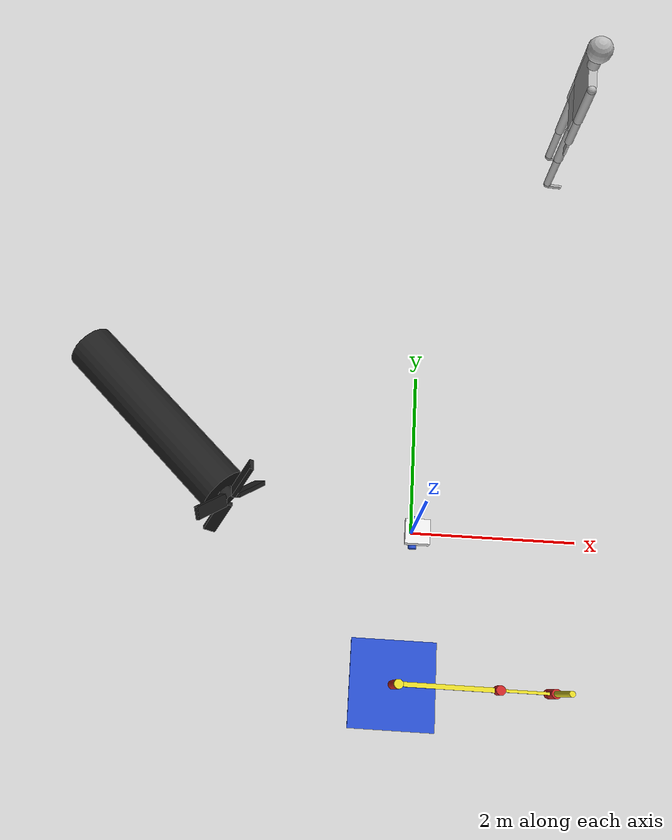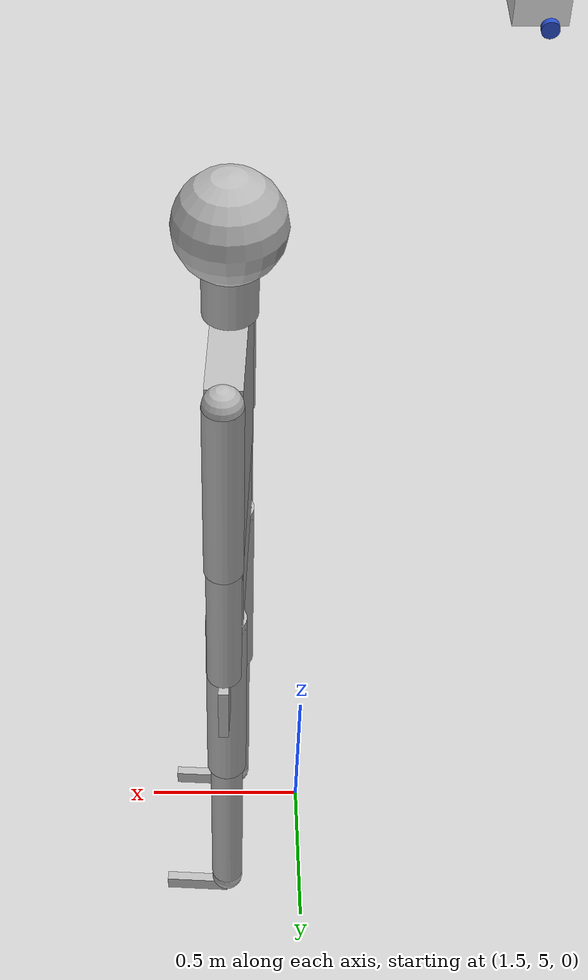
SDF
<sdf version="1.7">
 <world name="default">
  <light name="sun" type="directional">
   <pose>0 0 10 0 -0 0</pose>
   <diffuse>0.8 0.8 0.8 1</diffuse>
   <specular>0.2 0.2 0.2 1</specular>
   <attenuation>
    <range>1000</range>
    <constant>0.9</constant>
    <linear>0.01</linear>
    <quadratic>0.001</quadratic>
   </attenuation>
   <direction>-0.5 0.1 -0.9</direction>
   <spot><inner_angle>0</inner_angle><outer_angle>0</outer_angle><falloff>0</falloff></spot>
  </light>
  <model name="ground_plane">
   <static>1</static>
   <link name="link">
    <collision name="collision">
     <geometry><plane><normal>0 0 1</normal><size>100 100</size></plane></geometry>
     <surface>
      <contact><collide_bitmask>65535</collide_bitmask></contact>
      <friction><ode><mu>100</mu><mu2>50</mu2></ode></friction>
     </surface>
    </collision>
    <visual name="visual">
     <cast_shadows>0</cast_shadows>
     <geometry><plane><normal>0 0 1</normal><size>100 100</size></plane></geometry>
     <material>
      <script><uri>file://media/materials/scripts/gazebo.material</uri><name>Gazebo/Grey</name></script>
     </material>
    </visual>
   </link>
  </model>
  <gravity>0 0 -9.8</gravity>
  <magnetic_field>6e-06 2.3e-05 -4.2e-05</magnetic_field>
  <atmosphere type="adiabatic"/>
  <physics type="ode">
   <max_step_size>0.001</max_step_size>
   <real_time_factor>1</real_time_factor>
   <real_time_update_rate>1000</real_time_update_rate>
  </physics>
  <scene><ambient>0.4 0.4 0.4 1</ambient><background>0.7 0.7 0.7 1</background><shadows>1</shadows></scene>
  <audio><device>default</device></audio>
  <spherical_coordinates>
   <surface_model>EARTH_WGS84</surface_model>
   <latitude_deg>0</latitude_deg>
   <longitude_deg>0</longitude_deg>
   <elevation>0</elevation>
   <heading_deg>0</heading_deg>
  </spherical_coordinates>
  <model name="my_bot">
   <link name="base_link">
    <inertial>
     <pose>0.065 0 0.0625 0 -0 0</pose>
     <mass>0.6</mass>
     <inertia>
      <ixx>0.00525625</ixx>
      <ixy>0</ixy>
      <ixz>0.0005625</ixz>
      <iyy>0.00593125</iyy>
      <iyz>0</iyz>
      <izz>0.008275</izz>
     </inertia>
    </inertial>
    <collision name="base_link_fixed_joint_lump__chassis_collision">
     <pose>0.05 0 0.075 0 -0 0</pose>
     <geometry><box><size>0.3 0.3 0.15</size></box></geometry>
    </collision>
    <collision name="base_link_fixed_joint_lump__caster_wheel_collision_1">
     <pose>0.14 0 0 0 -0 0</pose>
     <geometry><sphere><radius>0.05</radius></sphere></geometry>
     <surface><friction><ode><mu>0.001</mu><mu2>0.001</mu2></ode></friction></surface>
    </collision>
    <visual name="base_link_fixed_joint_lump__chassis_visual">
     <pose>0.05 0 0.075 0 -0 0</pose>
     <geometry><box><size>0.3 0.3 0.15</size></box></geometry>
     <material>
      <script><name>Gazebo/White</name><uri>file://media/materials/scripts/gazebo.material</uri></script>
     </material>
    </visual>
    <visual name="base_link_fixed_joint_lump__caster_wheel_visual_1">
     <pose>0.14 0 0 0 -0 0</pose>
     <geometry><sphere><radius>0.05</radius></sphere></geometry>
     <material>
      <script><name>Gazebo/Black</name><uri>file://media/materials/scripts/gazebo.material</uri></script>
     </material>
    </visual>
   </link>
   <joint name="left_wheel_joint" type="revolute">
    <pose relative_to="base_link">0 0.175 0 -1.5708 0 0</pose>
    <parent>base_link</parent>
    <child>left_wheel</child>
    <axis>
     <xyz>0 0 1</xyz>
     <limit><lower>-1e+16</lower><upper>1e+16</upper></limit>
     <dynamics><spring_reference>0</spring_reference><spring_stiffness>0</spring_stiffness></dynamics>
    </axis>
   </joint>
   <link name="left_wheel">
    <pose relative_to="left_wheel_joint">0 0 0 0 -0 0</pose>
    <inertial>
     <mass>0.1</mass>
     <inertia>
      <ixx>7.58333e-05</ixx>
      <ixy>0</ixy>
      <ixz>0</ixz>
      <iyy>7.58333e-05</iyy>
      <iyz>0</iyz>
      <izz>0.000125</izz>
     </inertia>
    </inertial>
    <collision name="left_wheel_collision">
     <geometry><cylinder><length>0.04</length><radius>0.05</radius></cylinder></geometry>
    </collision>
    <visual name="left_wheel_visual">
     <geometry><cylinder><length>0.04</length><radius>0.05</radius></cylinder></geometry>
     <material>
      <script><name>Gazebo/Blue</name><uri>file://media/materials/scripts/gazebo.material</uri></script>
     </material>
    </visual>
   </link>
   <joint name="right_wheel_joint" type="revolute">
    <pose relative_to="base_link">0 -0.175 0 1.5708 -0 0</pose>
    <parent>base_link</parent>
    <child>right_wheel</child>
    <axis>
     <xyz>0 0 -1</xyz>
     <limit><lower>-1e+16</lower><upper>1e+16</upper></limit>
     <dynamics><spring_reference>0</spring_reference><spring_stiffness>0</spring_stiffness></dynamics>
    </axis>
   </joint>
   <link name="right_wheel">
    <pose relative_to="right_wheel_joint">0 0 0 0 -0 0</pose>
    <inertial>
     <mass>0.1</mass>
     <inertia>
      <ixx>7.58333e-05</ixx>
      <ixy>0</ixy>
      <ixz>0</ixz>
      <iyy>7.58333e-05</iyy>
      <iyz>0</iyz>
      <izz>0.000125</izz>
     </inertia>
    </inertial>
    <collision name="right_wheel_collision">
     <geometry><cylinder><length>0.04</length><radius>0.05</radius></cylinder></geometry>
    </collision>
    <visual name="right_wheel_visual">
     <geometry><cylinder><length>0.04</length><radius>0.05</radius></cylinder></geometry>
     <material>
      <script><name>Gazebo/Blue</name><uri>file://media/materials/scripts/gazebo.material</uri></script>
     </material>
    </visual>
   </link>
   <static>0</static>
   <plugin name="diff_drive" filename="libgazebo_ros_diff_drive.so">
    <left_joint>left_wheel_joint</left_joint>
    <right_joint>right_wheel_joint</right_joint>
    <wheel_separation>0.35</wheel_separation>
    <wheel_diameter>0.1</wheel_diameter>
    <max_wheel_torque>200</max_wheel_torque>
    <max_wheel_acceleration>10.0</max_wheel_acceleration>
    <odometry_frame>odom</odometry_frame>
    <robot_base_frame>base_link</robot_base_frame>
    <publish_odom>1</publish_odom>
    <publish_odom_tf>1</publish_odom_tf>
    <publish_wheel_tf>1</publish_wheel_tf>
   </plugin>
   <pose>0.020483 6.7e-05 0.05 0 1.5e-05 0.000398</pose>
  </model>
  <model name="ragdoll">
   <pose>1.74314 5.16667 1.39992 7.2e-05 0.008647 -0.063576</pose>
   <link name="hip">
    <inertial>
     <inertia><ixx>0.1</ixx><ixy>0</ixy><ixz>0</ixz><iyy>0.1</iyy><iyz>0</iyz><izz>0.1</izz></inertia>
     <mass>10</mass>
    </inertial>
    <collision name="hip_geom">
     <pose>0 0 0.125 0 -0 0</pose>
     <geometry><box><size>0.1 0.5 0.25</size></box></geometry>
     <surface>
      <friction><ode><mu>-1</mu><mu2>-1</mu2><fdir1>0 0 0</fdir1><slip1>0</slip1><slip2>0</slip2></ode></friction>
      <bounce><restitution_coefficient>0</restitution_coefficient><threshold>100000</threshold></bounce>
      <contact>
       <ode>
        <soft_cfm>0</soft_cfm>
        <soft_erp>0.2</soft_erp>
        <kp>1e+12</kp>
        <kd>1</kd>
        <max_vel>0</max_vel>
        <min_depth>0.001</min_depth>
       </ode>
      </contact>
     </surface>
    </collision>
    <visual name="hip_geom_visual">
     <pose>0 0 0.125 0 -0 0</pose>
     <geometry><box><size>0.1 0.5 0.25</size></box></geometry>
    </visual>
    <gravity>0</gravity>
   </link>
   <link name="l_thigh_pan">
    <pose>0 0.22 0 0 -0 0</pose>
    <inertial>
     <inertia><ixx>0.01</ixx><ixy>0</ixy><ixz>0</ixz><iyy>0.01</iyy><iyz>0</iyz><izz>0.01</izz></inertia>
     <mass>1</mass>
    </inertial>
    <collision name="l_thigh_pan_geom">
     <pose>0 0 -0.03 0 -0 0</pose>
     <geometry><sphere><radius>0.06</radius></sphere></geometry>
     <surface>
      <friction><ode><mu>-1</mu><mu2>-1</mu2><fdir1>0 0 0</fdir1><slip1>0</slip1><slip2>0</slip2></ode></friction>
      <bounce><restitution_coefficient>0</restitution_coefficient><threshold>100000</threshold></bounce>
      <contact>
       <ode>
        <soft_cfm>0</soft_cfm>
        <soft_erp>0.2</soft_erp>
        <kp>1e+12</kp>
        <kd>1</kd>
        <max_vel>0</max_vel>
        <min_depth>0.001</min_depth>
       </ode>
      </contact>
     </surface>
    </collision>
    <visual name="l_thigh_pan_geom_visual">
     <pose>0 0 -0.03 0 -0 0</pose>
     <geometry><sphere><radius>0.06</radius></sphere></geometry>
    </visual>
    <gravity>0</gravity>
   </link>
   <link name="l_thigh_lift">
    <pose>0 0.22 0 0 -0 0</pose>
    <inertial>
     <inertia><ixx>0.05</ixx><ixy>0</ixy><ixz>0</ixz><iyy>0.05</iyy><iyz>0</iyz><izz>0.05</izz></inertia>
     <mass>5</mass>
    </inertial>
    <collision name="l_thigh_lift_geom">
     <pose>0 0 -0.35 0 -0 0</pose>
     <geometry><cylinder><radius>0.06</radius><length>0.7</length></cylinder></geometry>
     <surface>
      <friction><ode><mu>-1</mu><mu2>-1</mu2><fdir1>0 0 0</fdir1><slip1>0</slip1><slip2>0</slip2></ode></friction>
      <bounce><restitution_coefficient>0</restitution_coefficient><threshold>100000</threshold></bounce>
      <contact>
       <ode>
        <soft_cfm>0</soft_cfm>
        <soft_erp>0.2</soft_erp>
        <kp>1e+12</kp>
        <kd>1</kd>
        <max_vel>0</max_vel>
        <min_depth>0.001</min_depth>
       </ode>
      </contact>
     </surface>
    </collision>
    <visual name="l_thigh_lift_geom_visual">
     <pose>0 0 -0.35 0 -0 0</pose>
     <geometry><cylinder><radius>0.06</radius><length>0.7</length></cylinder></geometry>
    </visual>
    <gravity>0</gravity>
   </link>
   <link name="l_calf">
    <pose>0 0.22 -0.7 0 -0 0</pose>
    <inertial>
     <inertia><ixx>0.02</ixx><ixy>0</ixy><ixz>0</ixz><iyy>0.02</iyy><iyz>0</iyz><izz>0.02</izz></inertia>
     <mass>2</mass>
    </inertial>
    <collision name="l_calf_geom">
     <pose>0 0 -0.3 0 -0 0</pose>
     <geometry><cylinder><radius>0.05</radius><length>0.6</length></cylinder></geometry>
     <surface>
      <friction><ode><mu>-1</mu><mu2>-1</mu2><fdir1>0 0 0</fdir1><slip1>0</slip1><slip2>0</slip2></ode></friction>
      <bounce><restitution_coefficient>0</restitution_coefficient><threshold>100000</threshold></bounce>
      <contact>
       <ode>
        <soft_cfm>0</soft_cfm>
        <soft_erp>0.2</soft_erp>
        <kp>1e+12</kp>
        <kd>1</kd>
        <max_vel>0</max_vel>
        <min_depth>0.001</min_depth>
       </ode>
      </contact>
     </surface>
    </collision>
    <visual name="l_calf_geom_visual">
     <pose>0 0 -0.3 0 -0 0</pose>
     <geometry><cylinder><radius>0.05</radius><length>0.6</length></cylinder></geometry>
    </visual>
    <gravity>0</gravity>
   </link>
   <link name="l_ankle">
    <pose>0 0.22 -1.325 0 -0 0</pose>
    <inertial>
     <inertia><ixx>0.01</ixx><ixy>0</ixy><ixz>0</ixz><iyy>0.01</iyy><iyz>0</iyz><izz>0.01</izz></inertia>
     <mass>1</mass>
    </inertial>
    <collision name="l_ankle_geom">
     <geometry><sphere><radius>0.05</radius></sphere></geometry>
     <surface>
      <friction><ode><mu>-1</mu><mu2>-1</mu2><fdir1>0 0 0</fdir1><slip1>0</slip1><slip2>0</slip2></ode></friction>
      <bounce><restitution_coefficient>0</restitution_coefficient><threshold>100000</threshold></bounce>
      <contact>
       <ode>
        <soft_cfm>0</soft_cfm>
        <soft_erp>0.2</soft_erp>
        <kp>1e+12</kp>
        <kd>1</kd>
        <max_vel>0</max_vel>
        <min_depth>0.001</min_depth>
       </ode>
      </contact>
     </surface>
    </collision>
    <visual name="l_ankle_geom_visual"><geometry><sphere><radius>0.05</radius></sphere></geometry></visual>
    <gravity>0</gravity>
   </link>
   <link name="l_foot">
    <pose>0 0.22 -1.35 0 -0 0</pose>
    <inertial>
     <pose>0.1 0 0 0 -0 0</pose>
     <inertia><ixx>0.01</ixx><ixy>0</ixy><ixz>0</ixz><iyy>0.01</iyy><iyz>0</iyz><izz>0.01</izz></inertia>
     <mass>1</mass>
    </inertial>
    <collision name="l_foot_geom">
     <pose>0.1 0 -0.025 0 -0 0</pose>
     <geometry><box><size>0.2 0.03 0.05</size></box></geometry>
     <surface>
      <friction><ode><mu>-1</mu><mu2>-1</mu2><fdir1>0 0 0</fdir1><slip1>0</slip1><slip2>0</slip2></ode></friction>
      <bounce><restitution_coefficient>0</restitution_coefficient><threshold>100000</threshold></bounce>
      <contact>
       <ode>
        <soft_cfm>0</soft_cfm>
        <soft_erp>0.2</soft_erp>
        <kp>1e+12</kp>
        <kd>1</kd>
        <max_vel>0</max_vel>
        <min_depth>0.001</min_depth>
       </ode>
      </contact>
     </surface>
    </collision>
    <visual name="l_foot_geom_visual">
     <pose>0.1 0 -0.025 0 -0 0</pose>
     <geometry><box><size>0.2 0.03 0.05</size></box></geometry>
    </visual>
   </link>
   <link name="r_thigh_pan">
    <pose>0 -0.22 0 0 -0 0</pose>
    <inertial>
     <inertia><ixx>0.01</ixx><ixy>0</ixy><ixz>0</ixz><iyy>0.01</iyy><iyz>0</iyz><izz>0.01</izz></inertia>
     <mass>1</mass>
    </inertial>
    <collision name="r_thigh_pan_geom">
     <pose>0 0 -0.03 0 -0 0</pose>
     <geometry><sphere><radius>0.06</radius></sphere></geometry>
     <surface>
      <friction><ode><mu>-1</mu><mu2>-1</mu2><fdir1>0 0 0</fdir1><slip1>0</slip1><slip2>0</slip2></ode></friction>
      <bounce><restitution_coefficient>0</restitution_coefficient><threshold>100000</threshold></bounce>
      <contact>
       <ode>
        <soft_cfm>0</soft_cfm>
        <soft_erp>0.2</soft_erp>
        <kp>1e+12</kp>
        <kd>1</kd>
        <max_vel>0</max_vel>
        <min_depth>0.001</min_depth>
       </ode>
      </contact>
     </surface>
    </collision>
    <visual name="r_thigh_pan_geom_visual">
     <pose>0 0 -0.03 0 -0 0</pose>
     <geometry><sphere><radius>0.06</radius></sphere></geometry>
    </visual>
    <gravity>0</gravity>
   </link>
   <link name="r_thigh_lift">
    <pose>0 -0.22 0 0 -0 0</pose>
    <inertial>
     <inertia><ixx>0.05</ixx><ixy>0</ixy><ixz>0</ixz><iyy>0.05</iyy><iyz>0</iyz><izz>0.05</izz></inertia>
     <mass>5</mass>
    </inertial>
    <collision name="r_thigh_lift_geom">
     <pose>0 0 -0.35 0 -0 0</pose>
     <geometry><cylinder><radius>0.06</radius><length>0.7</length></cylinder></geometry>
     <surface>
      <friction><ode><mu>-1</mu><mu2>-1</mu2><fdir1>0 0 0</fdir1><slip1>0</slip1><slip2>0</slip2></ode></friction>
      <bounce><restitution_coefficient>0</restitution_coefficient><threshold>100000</threshold></bounce>
      <contact>
       <ode>
        <soft_cfm>0</soft_cfm>
        <soft_erp>0.2</soft_erp>
        <kp>1e+12</kp>
        <kd>1</kd>
        <max_vel>0</max_vel>
        <min_depth>0.001</min_depth>
       </ode>
      </contact>
     </surface>
    </collision>
    <visual name="r_thigh_lift_geom_visual">
     <pose>0 0 -0.35 0 -0 0</pose>
     <geometry><cylinder><radius>0.06</radius><length>0.7</length></cylinder></geometry>
    </visual>
    <gravity>0</gravity>
   </link>
   <link name="r_calf">
    <pose>0 -0.22 -0.7 0 -0 0</pose>
    <inertial>
     <inertia><ixx>0.02</ixx><ixy>0</ixy><ixz>0</ixz><iyy>0.02</iyy><iyz>0</iyz><izz>0.02</izz></inertia>
     <mass>2</mass>
    </inertial>
    <collision name="r_calf_geom">
     <pose>0 0 -0.3 0 -0 0</pose>
     <geometry><cylinder><radius>0.05</radius><length>0.6</length></cylinder></geometry>
     <surface>
      <friction><ode><mu>-1</mu><mu2>-1</mu2><fdir1>0 0 0</fdir1><slip1>0</slip1><slip2>0</slip2></ode></friction>
      <bounce><restitution_coefficient>0</restitution_coefficient><threshold>100000</threshold></bounce>
      <contact>
       <ode>
        <soft_cfm>0</soft_cfm>
        <soft_erp>0.2</soft_erp>
        <kp>1e+12</kp>
        <kd>1</kd>
        <max_vel>0</max_vel>
        <min_depth>0.001</min_depth>
       </ode>
      </contact>
     </surface>
    </collision>
    <visual name="r_calf_geom_visual">
     <pose>0 0 -0.3 0 -0 0</pose>
     <geometry><cylinder><radius>0.05</radius><length>0.6</length></cylinder></geometry>
    </visual>
    <gravity>0</gravity>
   </link>
   <link name="r_ankle">
    <pose>0 -0.22 -1.325 0 -0 0</pose>
    <inertial>
     <inertia><ixx>0.01</ixx><ixy>0</ixy><ixz>0</ixz><iyy>0.01</iyy><iyz>0</iyz><izz>0.01</izz></inertia>
     <mass>1</mass>
    </inertial>
    <collision name="r_ankle_geom">
     <geometry><sphere><radius>0.05</radius></sphere></geometry>
     <surface>
      <friction><ode><mu>-1</mu><mu2>-1</mu2><fdir1>0 0 0</fdir1><slip1>0</slip1><slip2>0</slip2></ode></friction>
      <bounce><restitution_coefficient>0</restitution_coefficient><threshold>100000</threshold></bounce>
      <contact>
       <ode>
        <soft_cfm>0</soft_cfm>
        <soft_erp>0.2</soft_erp>
        <kp>1e+12</kp>
        <kd>1</kd>
        <max_vel>0</max_vel>
        <min_depth>0.001</min_depth>
       </ode>
      </contact>
     </surface>
    </collision>
    <visual name="r_ankle_geom_visual"><geometry><sphere><radius>0.05</radius></sphere></geometry></visual>
    <gravity>0</gravity>
   </link>
   <link name="r_foot">
    <pose>0 -0.22 -1.35 0 -0 0</pose>
    <inertial>
     <pose>0.1 0 0 0 -0 0</pose>
     <inertia><ixx>0.01</ixx><ixy>0</ixy><ixz>0</ixz><iyy>0.01</iyy><iyz>0</iyz><izz>0.01</izz></inertia>
     <mass>1</mass>
    </inertial>
    <collision name="r_foot_geom">
     <pose>0.1 0 -0.025 0 -0 0</pose>
     <geometry><box><size>0.2 0.03 0.05</size></box></geometry>
     <surface>
      <friction><ode><mu>-1</mu><mu2>-1</mu2><fdir1>0 0 0</fdir1><slip1>0</slip1><slip2>0</slip2></ode></friction>
      <bounce><restitution_coefficient>0</restitution_coefficient><threshold>100000</threshold></bounce>
      <contact>
       <ode>
        <soft_cfm>0</soft_cfm>
        <soft_erp>0.2</soft_erp>
        <kp>1e+12</kp>
        <kd>1</kd>
        <max_vel>0</max_vel>
        <min_depth>0.001</min_depth>
       </ode>
      </contact>
     </surface>
    </collision>
    <visual name="r_foot_geom_visual">
     <pose>0.1 0 -0.025 0 -0 0</pose>
     <geometry><box><size>0.2 0.03 0.05</size></box></geometry>
    </visual>
   </link>
   <link name="torso">
    <pose>0 0 0.25 0 -0 0</pose>
    <inertial>
     <inertia><ixx>0.3</ixx><ixy>0</ixy><ixz>0</ixz><iyy>0.3</iyy><iyz>0</iyz><izz>0.3</izz></inertia>
     <mass>30</mass>
    </inertial>
    <collision name="torso_geom">
     <pose>0 0 0.35 0 -0 0</pose>
     <geometry><box><size>0.1 0.6 0.7</size></box></geometry>
     <surface>
      <friction><ode><mu>-1</mu><mu2>-1</mu2><fdir1>0 0 0</fdir1><slip1>0</slip1><slip2>0</slip2></ode></friction>
      <bounce><restitution_coefficient>0</restitution_coefficient><threshold>100000</threshold></bounce>
      <contact>
       <ode>
        <soft_cfm>0</soft_cfm>
        <soft_erp>0.2</soft_erp>
        <kp>1e+12</kp>
        <kd>1</kd>
        <max_vel>0</max_vel>
        <min_depth>0.001</min_depth>
       </ode>
      </contact>
     </surface>
    </collision>
    <visual name="torso_geom_visual">
     <pose>0 0 0.35 0 -0 0</pose>
     <geometry><box><size>0.1 0.6 0.7</size></box></geometry>
    </visual>
    <gravity>0</gravity>
   </link>
   <link name="l_shoulder">
    <pose>0 0.3275 0.9225 0 -0 0</pose>
    <inertial>
     <inertia><ixx>0.01</ixx><ixy>0</ixy><ixz>0</ixz><iyy>0.01</iyy><iyz>0</iyz><izz>0.01</izz></inertia>
     <mass>1</mass>
    </inertial>
    <collision name="l_shoulder_geom">
     <geometry><sphere><radius>0.055</radius></sphere></geometry>
     <surface>
      <friction><ode><mu>-1</mu><mu2>-1</mu2><fdir1>0 0 0</fdir1><slip1>0</slip1><slip2>0</slip2></ode></friction>
      <bounce><restitution_coefficient>0</restitution_coefficient><threshold>100000</threshold></bounce>
      <contact>
       <ode>
        <soft_cfm>0</soft_cfm>
        <soft_erp>0.2</soft_erp>
        <kp>1e+12</kp>
        <kd>1</kd>
        <max_vel>0</max_vel>
        <min_depth>0.001</min_depth>
       </ode>
      </contact>
     </surface>
    </collision>
    <visual name="l_shoulder_geom_visual"><geometry><sphere><radius>0.055</radius></sphere></geometry></visual>
    <gravity>0</gravity>
   </link>
   <link name="l_upper_arm">
    <pose>0 0.3275 0.9225 0 -0 0</pose>
    <inertial>
     <inertia><ixx>0.02</ixx><ixy>0</ixy><ixz>0</ixz><iyy>0.02</iyy><iyz>0</iyz><izz>0.02</izz></inertia>
     <mass>2</mass>
    </inertial>
    <collision name="l_upper_arm_geom">
     <pose>0 0 -0.3 0 -0 0</pose>
     <geometry><cylinder><radius>0.055</radius><length>0.6</length></cylinder></geometry>
     <surface>
      <friction><ode><mu>-1</mu><mu2>-1</mu2><fdir1>0 0 0</fdir1><slip1>0</slip1><slip2>0</slip2></ode></friction>
      <bounce><restitution_coefficient>0</restitution_coefficient><threshold>100000</threshold></bounce>
      <contact>
       <ode>
        <soft_cfm>0</soft_cfm>
        <soft_erp>0.2</soft_erp>
        <kp>1e+12</kp>
        <kd>1</kd>
        <max_vel>0</max_vel>
        <min_depth>0.001</min_depth>
       </ode>
      </contact>
     </surface>
    </collision>
    <visual name="l_upper_arm_geom_visual">
     <pose>0 0 -0.3 0 -0 0</pose>
     <geometry><cylinder><radius>0.055</radius><length>0.6</length></cylinder></geometry>
    </visual>
    <gravity>0</gravity>
   </link>
   <link name="l_forearm">
    <pose>0 0.3275 0.3225 0 -0 0</pose>
    <inertial>
     <inertia><ixx>0.01</ixx><ixy>0</ixy><ixz>0</ixz><iyy>0.01</iyy><iyz>0</iyz><izz>0.01</izz></inertia>
     <mass>1</mass>
    </inertial>
    <collision name="l_forearm_geom">
     <pose>0 0 -0.225 0 -0 0</pose>
     <geometry><cylinder><radius>0.05</radius><length>0.45</length></cylinder></geometry>
     <surface>
      <friction><ode><mu>-1</mu><mu2>-1</mu2><fdir1>0 0 0</fdir1><slip1>0</slip1><slip2>0</slip2></ode></friction>
      <bounce><restitution_coefficient>0</restitution_coefficient><threshold>100000</threshold></bounce>
      <contact>
       <ode>
        <soft_cfm>0</soft_cfm>
        <soft_erp>0.2</soft_erp>
        <kp>1e+12</kp>
        <kd>1</kd>
        <max_vel>0</max_vel>
        <min_depth>0.001</min_depth>
       </ode>
      </contact>
     </surface>
    </collision>
    <visual name="l_forearm_geom_visual">
     <pose>0 0 -0.225 0 -0 0</pose>
     <geometry><cylinder><radius>0.05</radius><length>0.45</length></cylinder></geometry>
    </visual>
    <gravity>0</gravity>
   </link>
   <link name="l_wrist">
    <pose>0 0.3275 -0.1425 0 -0 0</pose>
    <inertial>
     <inertia><ixx>0.01</ixx><ixy>0</ixy><ixz>0</ixz><iyy>0.01</iyy><iyz>0</iyz><izz>0.01</izz></inertia>
     <mass>1</mass>
    </inertial>
    <collision name="l_wrist_geom">
     <geometry><sphere><radius>0.03</radius></sphere></geometry>
     <surface>
      <friction><ode><mu>-1</mu><mu2>-1</mu2><fdir1>0 0 0</fdir1><slip1>0</slip1><slip2>0</slip2></ode></friction>
      <bounce><restitution_coefficient>0</restitution_coefficient><threshold>100000</threshold></bounce>
      <contact>
       <ode>
        <soft_cfm>0</soft_cfm>
        <soft_erp>0.2</soft_erp>
        <kp>1e+12</kp>
        <kd>1</kd>
        <max_vel>0</max_vel>
        <min_depth>0.001</min_depth>
       </ode>
      </contact>
     </surface>
    </collision>
    <visual name="l_wrist_geom_visual"><geometry><sphere><radius>0.03</radius></sphere></geometry></visual>
    <gravity>0</gravity>
   </link>
   <link name="l_hand">
    <pose>0 0.3275 -0.1575 0 -0 0</pose>
    <inertial>
     <inertia><ixx>0.01</ixx><ixy>0</ixy><ixz>0</ixz><iyy>0.01</iyy><iyz>0</iyz><izz>0.01</izz></inertia>
     <mass>1</mass>
    </inertial>
    <collision name="l_hand_geom">
     <pose>0 0 -0.1 0 -0 0</pose>
     <geometry><box><size>0.03 0.1 0.2</size></box></geometry>
     <surface>
      <friction><ode><mu>-1</mu><mu2>-1</mu2><fdir1>0 0 0</fdir1><slip1>0</slip1><slip2>0</slip2></ode></friction>
      <bounce><restitution_coefficient>0</restitution_coefficient><threshold>100000</threshold></bounce>
      <contact>
       <ode>
        <soft_cfm>0</soft_cfm>
        <soft_erp>0.2</soft_erp>
        <kp>1e+12</kp>
        <kd>1</kd>
        <max_vel>0</max_vel>
        <min_depth>0.001</min_depth>
       </ode>
      </contact>
     </surface>
    </collision>
    <visual name="l_hand_geom_visual">
     <pose>0 0 -0.1 0 -0 0</pose>
     <geometry><box><size>0.03 0.1 0.2</size></box></geometry>
    </visual>
    <gravity>0</gravity>
   </link>
   <link name="neck">
    <pose>0 0 0.95 0 -0 0</pose>
    <inertial>
     <inertia><ixx>0.01</ixx><ixy>0</ixy><ixz>0</ixz><iyy>0.01</iyy><iyz>0</iyz><izz>0.01</izz></inertia>
     <mass>1</mass>
    </inertial>
    <collision name="neck_geom">
     <pose>0 0 0.1 0 -0 0</pose>
     <geometry><cylinder><radius>0.075</radius><length>0.2</length></cylinder></geometry>
     <surface>
      <friction><ode><mu>-1</mu><mu2>-1</mu2><fdir1>0 0 0</fdir1><slip1>0</slip1><slip2>0</slip2></ode></friction>
      <bounce><restitution_coefficient>0</restitution_coefficient><threshold>100000</threshold></bounce>
      <contact>
       <ode>
        <soft_cfm>0</soft_cfm>
        <soft_erp>0.2</soft_erp>
        <kp>1e+12</kp>
        <kd>1</kd>
        <max_vel>0</max_vel>
        <min_depth>0.001</min_depth>
       </ode>
      </contact>
     </surface>
    </collision>
    <visual name="neck_geom_visual">
     <pose>0 0 0.1 0 -0 0</pose>
     <geometry><cylinder><radius>0.075</radius><length>0.2</length></cylinder></geometry>
    </visual>
    <gravity>0</gravity>
   </link>
   <link name="head">
    <pose>0 0 1.225 0 -0 0</pose>
    <inertial>
     <inertia><ixx>0.1</ixx><ixy>0</ixy><ixz>0</ixz><iyy>0.1</iyy><iyz>0</iyz><izz>0.1</izz></inertia>
     <mass>10</mass>
    </inertial>
    <collision name="head_geom">
     <geometry><sphere><radius>0.15</radius></sphere></geometry>
     <surface>
      <friction><ode><mu>-1</mu><mu2>-1</mu2><fdir1>0 0 0</fdir1><slip1>0</slip1><slip2>0</slip2></ode></friction>
      <bounce><restitution_coefficient>0</restitution_coefficient><threshold>100000</threshold></bounce>
      <contact>
       <ode>
        <soft_cfm>0</soft_cfm>
        <soft_erp>0.2</soft_erp>
        <kp>1e+12</kp>
        <kd>1</kd>
        <max_vel>0</max_vel>
        <min_depth>0.001</min_depth>
       </ode>
      </contact>
     </surface>
    </collision>
    <visual name="head_geom_visual"><geometry><sphere><radius>0.15</radius></sphere></geometry></visual>
    <gravity>0</gravity>
   </link>
   <link name="r_shoulder">
    <pose>0 -0.3275 0.9225 0 -0 0</pose>
    <inertial>
     <inertia><ixx>0.01</ixx><ixy>0</ixy><ixz>0</ixz><iyy>0.01</iyy><iyz>0</iyz><izz>0.01</izz></inertia>
     <mass>1</mass>
    </inertial>
    <collision name="r_shoulder_geom">
     <geometry><sphere><radius>0.055</radius></sphere></geometry>
     <surface>
      <friction><ode><mu>-1</mu><mu2>-1</mu2><fdir1>0 0 0</fdir1><slip1>0</slip1><slip2>0</slip2></ode></friction>
      <bounce><restitution_coefficient>0</restitution_coefficient><threshold>100000</threshold></bounce>
      <contact>
       <ode>
        <soft_cfm>0</soft_cfm>
        <soft_erp>0.2</soft_erp>
        <kp>1e+12</kp>
        <kd>1</kd>
        <max_vel>0</max_vel>
        <min_depth>0.001</min_depth>
       </ode>
      </contact>
     </surface>
    </collision>
    <visual name="r_shoulder_geom_visual"><geometry><sphere><radius>0.055</radius></sphere></geometry></visual>
    <gravity>0</gravity>
   </link>
   <link name="r_upper_arm">
    <pose>0 -0.3275 0.9225 0 -0 0</pose>
    <inertial>
     <inertia><ixx>0.02</ixx><ixy>0</ixy><ixz>0</ixz><iyy>0.02</iyy><iyz>0</iyz><izz>0.02</izz></inertia>
     <mass>2</mass>
    </inertial>
    <collision name="r_upper_arm_geom">
     <pose>0 0 -0.3 0 -0 0</pose>
     <geometry><cylinder><radius>0.055</radius><length>0.6</length></cylinder></geometry>
     <surface>
      <friction><ode><mu>-1</mu><mu2>-1</mu2><fdir1>0 0 0</fdir1><slip1>0</slip1><slip2>0</slip2></ode></friction>
      <bounce><restitution_coefficient>0</restitution_coefficient><threshold>100000</threshold></bounce>
      <contact>
       <ode>
        <soft_cfm>0</soft_cfm>
        <soft_erp>0.2</soft_erp>
        <kp>1e+12</kp>
        <kd>1</kd>
        <max_vel>0</max_vel>
        <min_depth>0.001</min_depth>
       </ode>
      </contact>
     </surface>
    </collision>
    <visual name="r_upper_arm_geom_visual">
     <pose>0 0 -0.3 0 -0 0</pose>
     <geometry><cylinder><radius>0.055</radius><length>0.6</length></cylinder></geometry>
    </visual>
    <gravity>0</gravity>
   </link>
   <link name="r_forearm">
    <pose>0 -0.3275 0.3225 0 -0 0</pose>
    <inertial>
     <inertia><ixx>0.01</ixx><ixy>0</ixy><ixz>0</ixz><iyy>0.01</iyy><iyz>0</iyz><izz>0.01</izz></inertia>
     <mass>1</mass>
    </inertial>
    <collision name="r_forearm_geom">
     <pose>0 0 -0.225 0 -0 0</pose>
     <geometry><cylinder><radius>0.05</radius><length>0.45</length></cylinder></geometry>
     <surface>
      <friction><ode><mu>-1</mu><mu2>-1</mu2><fdir1>0 0 0</fdir1><slip1>0</slip1><slip2>0</slip2></ode></friction>
      <bounce><restitution_coefficient>0</restitution_coefficient><threshold>100000</threshold></bounce>
      <contact>
       <ode>
        <soft_cfm>0</soft_cfm>
        <soft_erp>0.2</soft_erp>
        <kp>1e+12</kp>
        <kd>1</kd>
        <max_vel>0</max_vel>
        <min_depth>0.001</min_depth>
       </ode>
      </contact>
     </surface>
    </collision>
    <visual name="r_forearm_geom_visual">
     <pose>0 0 -0.225 0 -0 0</pose>
     <geometry><cylinder><radius>0.05</radius><length>0.45</length></cylinder></geometry>
    </visual>
    <gravity>0</gravity>
   </link>
   <link name="r_wrist">
    <pose>0 -0.3275 -0.1425 0 -0 0</pose>
    <inertial>
     <inertia><ixx>0.01</ixx><ixy>0</ixy><ixz>0</ixz><iyy>0.01</iyy><iyz>0</iyz><izz>0.01</izz></inertia>
     <mass>1</mass>
    </inertial>
    <collision name="r_wrist_geom">
     <geometry><sphere><radius>0.03</radius></sphere></geometry>
     <surface>
      <friction><ode><mu>-1</mu><mu2>-1</mu2><fdir1>0 0 0</fdir1><slip1>0</slip1><slip2>0</slip2></ode></friction>
      <bounce><restitution_coefficient>0</restitution_coefficient><threshold>100000</threshold></bounce>
      <contact>
       <ode>
        <soft_cfm>0</soft_cfm>
        <soft_erp>0.2</soft_erp>
        <kp>1e+12</kp>
        <kd>1</kd>
        <max_vel>0</max_vel>
        <min_depth>0.001</min_depth>
       </ode>
      </contact>
     </surface>
    </collision>
    <visual name="r_wrist_geom_visual"><geometry><sphere><radius>0.03</radius></sphere></geometry></visual>
    <gravity>0</gravity>
   </link>
   <link name="r_hand">
    <pose>0 -0.3275 -0.1575 0 -0 0</pose>
    <inertial>
     <inertia><ixx>0.01</ixx><ixy>0</ixy><ixz>0</ixz><iyy>0.01</iyy><iyz>0</iyz><izz>0.01</izz></inertia>
     <mass>1</mass>
    </inertial>
    <collision name="r_hand_geom">
     <pose>0 0 -0.1 0 -0 0</pose>
     <geometry><box><size>0.03 0.1 0.2</size></box></geometry>
     <surface>
      <friction><ode><mu>-1</mu><mu2>-1</mu2><fdir1>0 0 0</fdir1><slip1>0</slip1><slip2>0</slip2></ode></friction>
      <bounce><restitution_coefficient>0</restitution_coefficient><threshold>100000</threshold></bounce>
      <contact>
       <ode>
        <soft_cfm>0</soft_cfm>
        <soft_erp>0.2</soft_erp>
        <kp>1e+12</kp>
        <kd>1</kd>
        <max_vel>0</max_vel>
        <min_depth>0.001</min_depth>
       </ode>
      </contact>
     </surface>
    </collision>
    <visual name="r_hand_geom_visual">
     <pose>0 0 -0.1 0 -0 0</pose>
     <geometry><box><size>0.03 0.1 0.2</size></box></geometry>
    </visual>
    <gravity>0</gravity>
   </link>
   <joint name="l_thigh_pan_joint" type="revolute">
    <parent>hip</parent>
    <child>l_thigh_pan</child>
    <axis>
     <dynamics>
      <damping>0</damping>
      <friction>0</friction>
      <spring_reference>0</spring_reference>
      <spring_stiffness>0</spring_stiffness>
     </dynamics>
     <limit><lower>-1.5708</lower><upper>1.5708</upper><effort>0</effort><velocity>0</velocity></limit>
     <xyz expressed_in="__model__">0 0 1</xyz>
    </axis>
   </joint>
   <joint name="l_thigh_lift_joint" type="revolute">
    <parent>l_thigh_pan</parent>
    <child>l_thigh_lift</child>
    <axis>
     <dynamics>
      <damping>0</damping>
      <friction>0</friction>
      <spring_reference>0</spring_reference>
      <spring_stiffness>0</spring_stiffness>
     </dynamics>
     <limit><lower>-1.5708</lower><upper>1.5708</upper><effort>0</effort><velocity>0</velocity></limit>
     <xyz expressed_in="__model__">0 1 0</xyz>
    </axis>
   </joint>
   <joint name="l_calf_joint" type="revolute">
    <parent>l_thigh_lift</parent>
    <child>l_calf</child>
    <axis>
     <dynamics>
      <damping>0</damping>
      <friction>0</friction>
      <spring_reference>0</spring_reference>
      <spring_stiffness>0</spring_stiffness>
     </dynamics>
     <limit><lower>-1.5708</lower><upper>1.5708</upper><effort>0</effort><velocity>0</velocity></limit>
     <xyz expressed_in="__model__">0 1 0</xyz>
    </axis>
   </joint>
   <joint name="l_ankle_joint" type="revolute">
    <parent>l_calf</parent>
    <child>l_ankle</child>
    <axis>
     <dynamics>
      <damping>0</damping>
      <friction>0</friction>
      <spring_reference>0</spring_reference>
      <spring_stiffness>0</spring_stiffness>
     </dynamics>
     <limit><lower>-1.5708</lower><upper>1.5708</upper><effort>0</effort><velocity>0</velocity></limit>
     <xyz expressed_in="__model__">0 1 0</xyz>
    </axis>
   </joint>
   <joint name="l_foot_joint" type="revolute">
    <parent>l_ankle</parent>
    <child>l_foot</child>
    <axis>
     <dynamics>
      <damping>0</damping>
      <friction>0</friction>
      <spring_reference>0</spring_reference>
      <spring_stiffness>0</spring_stiffness>
     </dynamics>
     <limit><lower>-1.5708</lower><upper>1.5708</upper><effort>0</effort><velocity>0</velocity></limit>
     <xyz expressed_in="__model__">1 0 0</xyz>
    </axis>
   </joint>
   <joint name="r_thigh_pan_joint" type="revolute">
    <parent>hip</parent>
    <child>r_thigh_pan</child>
    <axis>
     <dynamics>
      <damping>0</damping>
      <friction>0</friction>
      <spring_reference>0</spring_reference>
      <spring_stiffness>0</spring_stiffness>
     </dynamics>
     <limit><lower>-1.5708</lower><upper>1.5708</upper><effort>0</effort><velocity>0</velocity></limit>
     <xyz expressed_in="__model__">0 0 1</xyz>
    </axis>
   </joint>
   <joint name="r_thigh_lift_joint" type="revolute">
    <parent>r_thigh_pan</parent>
    <child>r_thigh_lift</child>
    <axis>
     <dynamics>
      <damping>0</damping>
      <friction>0</friction>
      <spring_reference>0</spring_reference>
      <spring_stiffness>0</spring_stiffness>
     </dynamics>
     <limit><lower>-1.5708</lower><upper>1.5708</upper><effort>0</effort><velocity>0</velocity></limit>
     <xyz expressed_in="__model__">0 1 0</xyz>
    </axis>
   </joint>
   <joint name="r_calf_joint" type="revolute">
    <parent>r_thigh_lift</parent>
    <child>r_calf</child>
    <axis>
     <dynamics>
      <damping>0</damping>
      <friction>0</friction>
      <spring_reference>0</spring_reference>
      <spring_stiffness>0</spring_stiffness>
     </dynamics>
     <limit><lower>-1.5708</lower><upper>1.5708</upper><effort>0</effort><velocity>0</velocity></limit>
     <xyz expressed_in="__model__">0 1 0</xyz>
    </axis>
   </joint>
   <joint name="r_ankle_joint" type="revolute">
    <parent>r_calf</parent>
    <child>r_ankle</child>
    <axis>
     <dynamics>
      <damping>0</damping>
      <friction>0</friction>
      <spring_reference>0</spring_reference>
      <spring_stiffness>0</spring_stiffness>
     </dynamics>
     <limit><lower>-1.5708</lower><upper>1.5708</upper><effort>0</effort><velocity>0</velocity></limit>
     <xyz expressed_in="__model__">0 1 0</xyz>
    </axis>
   </joint>
   <joint name="r_foot_joint" type="revolute">
    <parent>r_ankle</parent>
    <child>r_foot</child>
    <axis>
     <dynamics>
      <damping>0</damping>
      <friction>0</friction>
      <spring_reference>0</spring_reference>
      <spring_stiffness>0</spring_stiffness>
     </dynamics>
     <limit><lower>-1.5708</lower><upper>1.5708</upper><effort>0</effort><velocity>0</velocity></limit>
     <xyz expressed_in="__model__">1 0 0</xyz>
    </axis>
   </joint>
   <joint name="torso_joint" type="revolute">
    <parent>hip</parent>
    <child>torso</child>
    <axis>
     <dynamics>
      <damping>0</damping>
      <friction>0</friction>
      <spring_reference>0</spring_reference>
      <spring_stiffness>0</spring_stiffness>
     </dynamics>
     <limit><lower>-1.5708</lower><upper>1.5708</upper><effort>0</effort><velocity>0</velocity></limit>
     <xyz expressed_in="__model__">0 1 0</xyz>
    </axis>
   </joint>
   <joint name="l_shoulder_joint" type="revolute">
    <parent>torso</parent>
    <child>l_shoulder</child>
    <axis>
     <dynamics>
      <damping>0</damping>
      <friction>0</friction>
      <spring_reference>0</spring_reference>
      <spring_stiffness>0</spring_stiffness>
     </dynamics>
     <limit><lower>-1.5708</lower><upper>1.5708</upper><effort>0</effort><velocity>0</velocity></limit>
     <xyz expressed_in="__model__">1 0 0</xyz>
    </axis>
   </joint>
   <joint name="l_upper_arm_joint" type="revolute">
    <parent>l_shoulder</parent>
    <child>l_upper_arm</child>
    <axis>
     <dynamics>
      <damping>0</damping>
      <friction>0</friction>
      <spring_reference>0</spring_reference>
      <spring_stiffness>0</spring_stiffness>
     </dynamics>
     <limit><lower>-1.5708</lower><upper>1.5708</upper><effort>0</effort><velocity>0</velocity></limit>
     <xyz expressed_in="__model__">0 1 0</xyz>
    </axis>
   </joint>
   <joint name="l_forearm_joint" type="revolute">
    <parent>l_upper_arm</parent>
    <child>l_forearm</child>
    <axis>
     <dynamics>
      <damping>0</damping>
      <friction>0</friction>
      <spring_reference>0</spring_reference>
      <spring_stiffness>0</spring_stiffness>
     </dynamics>
     <limit><lower>-1.5708</lower><upper>1.5708</upper><effort>0</effort><velocity>0</velocity></limit>
     <xyz expressed_in="__model__">0 1 0</xyz>
    </axis>
   </joint>
   <joint name="l_wrist_joint" type="revolute">
    <parent>l_forearm</parent>
    <child>l_wrist</child>
    <axis>
     <dynamics>
      <damping>0</damping>
      <friction>0</friction>
      <spring_reference>0</spring_reference>
      <spring_stiffness>0</spring_stiffness>
     </dynamics>
     <limit><lower>-1.5708</lower><upper>1.5708</upper><effort>0</effort><velocity>0</velocity></limit>
     <xyz expressed_in="__model__">0 1 0</xyz>
    </axis>
   </joint>
   <joint name="l_hand_joint" type="revolute">
    <parent>l_wrist</parent>
    <child>l_hand</child>
    <axis>
     <dynamics>
      <damping>0</damping>
      <friction>0</friction>
      <spring_reference>0</spring_reference>
      <spring_stiffness>0</spring_stiffness>
     </dynamics>
     <limit><lower>-1.5708</lower><upper>1.5708</upper><effort>0</effort><velocity>0</velocity></limit>
     <xyz expressed_in="__model__">0 1 0</xyz>
    </axis>
   </joint>
   <joint name="neck_joint" type="revolute">
    <parent>torso</parent>
    <child>neck</child>
    <axis>
     <dynamics>
      <damping>0</damping>
      <friction>0</friction>
      <spring_reference>0</spring_reference>
      <spring_stiffness>0</spring_stiffness>
     </dynamics>
     <limit><lower>-1.5708</lower><upper>1.5708</upper><effort>0</effort><velocity>0</velocity></limit>
     <xyz expressed_in="__model__">0 0 1</xyz>
    </axis>
   </joint>
   <joint name="head_joint" type="revolute">
    <parent>neck</parent>
    <child>head</child>
    <axis>
     <dynamics>
      <damping>0</damping>
      <friction>0</friction>
      <spring_reference>0</spring_reference>
      <spring_stiffness>0</spring_stiffness>
     </dynamics>
     <limit><lower>-1.5708</lower><upper>1.5708</upper><effort>0</effort><velocity>0</velocity></limit>
     <xyz expressed_in="__model__">0 1 0</xyz>
    </axis>
   </joint>
   <joint name="r_shoulder_joint" type="revolute">
    <parent>torso</parent>
    <child>r_shoulder</child>
    <axis>
     <dynamics>
      <damping>0</damping>
      <friction>0</friction>
      <spring_reference>0</spring_reference>
      <spring_stiffness>0</spring_stiffness>
     </dynamics>
     <limit><lower>-1.5708</lower><upper>1.5708</upper><effort>0</effort><velocity>0</velocity></limit>
     <xyz expressed_in="__model__">1 0 0</xyz>
    </axis>
   </joint>
   <joint name="r_upper_arm_joint" type="revolute">
    <parent>r_shoulder</parent>
    <child>r_upper_arm</child>
    <axis>
     <dynamics>
      <damping>0</damping>
      <friction>0</friction>
      <spring_reference>0</spring_reference>
      <spring_stiffness>0</spring_stiffness>
     </dynamics>
     <limit><lower>-1.5708</lower><upper>1.5708</upper><effort>0</effort><velocity>0</velocity></limit>
     <xyz expressed_in="__model__">0 1 0</xyz>
    </axis>
   </joint>
   <joint name="r_forearm_joint" type="revolute">
    <parent>r_upper_arm</parent>
    <child>r_forearm</child>
    <axis>
     <dynamics>
      <damping>0</damping>
      <friction>0</friction>
      <spring_reference>0</spring_reference>
      <spring_stiffness>0</spring_stiffness>
     </dynamics>
     <limit><lower>-1.5708</lower><upper>1.5708</upper><effort>0</effort><velocity>0</velocity></limit>
     <xyz expressed_in="__model__">0 1 0</xyz>
    </axis>
   </joint>
   <joint name="r_wrist_joint" type="revolute">
    <parent>r_forearm</parent>
    <child>r_wrist</child>
    <axis>
     <dynamics>
      <damping>0</damping>
      <friction>0</friction>
      <spring_reference>0</spring_reference>
      <spring_stiffness>0</spring_stiffness>
     </dynamics>
     <limit><lower>-1.5708</lower><upper>1.5708</upper><effort>0</effort><velocity>0</velocity></limit>
     <xyz expressed_in="__model__">0 1 0</xyz>
    </axis>
   </joint>
   <joint name="r_hand_joint" type="revolute">
    <parent>r_wrist</parent>
    <child>r_hand</child>
    <axis>
     <dynamics>
      <damping>0</damping>
      <friction>0</friction>
      <spring_reference>0</spring_reference>
      <spring_stiffness>0</spring_stiffness>
     </dynamics>
     <limit><lower>-1.5708</lower><upper>1.5708</upper><effort>0</effort><velocity>0</velocity></limit>
     <xyz expressed_in="__model__">0 1 0</xyz>
    </axis>
   </joint>
   <static>0</static>
  </model>
  <model name="submarine_sinking">
   <pose>-2.45182 0.454096 0.449062 1.48225 0.7795 0.750695</pose>
   <link name="body">
    <pose>0 0 -1.07935 0 -0 0</pose>
    <inertial>
     <mass>1102.7</mass>
     <inertia><ixx>645.998</ixx><ixy>0</ixy><ixz>0</ixz><iyy>645.998</iyy><iyz>0</iyz><izz>49.6215</izz></inertia>
    </inertial>
    <visual name="body_visual">
     <geometry><cylinder><radius>0.3</radius><length>2.6</length></cylinder></geometry>
     <material>
      <script><uri>file://media/materials/scripts/gazebo.material</uri><name>Gazebo/Black</name></script>
     </material>
    </visual>
    <collision name="body_collision">
     <geometry><cylinder><radius>0.3</radius><length>2.6</length></cylinder></geometry>
    </collision>
    <visual name="spacer_visual">
     <pose>0 0 1.37855 0 -0 0</pose>
     <geometry><cylinder><radius>0.0933402</radius><length>0.127211</length></cylinder></geometry>
     <material>
      <script><uri>file://media/materials/scripts/gazebo.material</uri><name>Gazebo/Black</name></script>
     </material>
    </visual>
   </link>
   <link name="propeller">
    <pose>0 0 0.3455 3.14159 -0 0</pose>
    <inertial>
     <mass>25.2312</mass>
     <inertia><ixx>0.531907</ixx><ixy>0</ixy><ixz>0</ixz><iyy>0.531907</iyy><iyz>0</iyz><izz>1.0513</izz></inertia>
    </inertial>
    <visual name="blade1_visual">
     <pose>0.34334 0 0 0.785398 -0 0</pose>
     <geometry><box><size>0.5 0.154178 0.05455</size></box></geometry>
     <material>
      <script><uri>file://media/materials/scripts/gazebo.material</uri><name>Gazebo/Black</name></script>
     </material>
    </visual>
    <collision name="blade1_collision">
     <pose>0.34334 0 0 0.785398 -0 0</pose>
     <geometry><box><size>0.5 0.154178 0.05455</size></box></geometry>
    </collision>
    <visual name="blade2_visual">
     <pose>0 0.34334 0 0.785398 0 1.5708</pose>
     <geometry><box><size>0.5 0.154178 0.05455</size></box></geometry>
     <material>
      <script><uri>file://media/materials/scripts/gazebo.material</uri><name>Gazebo/Black</name></script>
     </material>
    </visual>
    <collision name="blade2_collision">
     <pose>0 0.34334 0 0.785398 0 1.5708</pose>
     <geometry><box><size>0.5 0.154178 0.05455</size></box></geometry>
    </collision>
    <visual name="blade3_visual">
     <pose>-0.34334 -0 0 -0.785398 0 0</pose>
     <geometry><box><size>0.5 0.154178 0.05455</size></box></geometry>
     <material>
      <script><uri>file://media/materials/scripts/gazebo.material</uri><name>Gazebo/Black</name></script>
     </material>
    </visual>
    <collision name="blade3_collision">
     <pose>-0.34334 -0 0 -0.785398 0 0</pose>
     <geometry><box><size>0.5 0.154178 0.05455</size></box></geometry>
    </collision>
    <visual name="blade4_visual">
     <pose>-0 -0.34334 0 -0.785398 -0 1.5708</pose>
     <geometry><box><size>0.5 0.154178 0.05455</size></box></geometry>
     <material>
      <script><uri>file://media/materials/scripts/gazebo.material</uri><name>Gazebo/Black</name></script>
     </material>
    </visual>
    <collision name="blade4_collision">
     <pose>-0 -0.34334 0 -0.785398 -0 1.5708</pose>
     <geometry><box><size>0.5 0.154178 0.05455</size></box></geometry>
    </collision>
   </link>
   <joint name="spinning_joint" type="revolute">
    <parent>body</parent>
    <child>propeller</child>
    <axis>
     <xyz expressed_in="__model__">0 0 1</xyz>
     <limit><lower>-1e+12</lower><upper>1e+12</upper><effort>-1</effort><velocity>-1</velocity></limit>
     <dynamics><spring_reference>0</spring_reference><spring_stiffness>0</spring_stiffness></dynamics>
    </axis>
   </joint>
   <plugin name="buoyancy" filename="libBuoyancyPlugin.so"><fluid_density>999.1026</fluid_density></plugin>
  </model>
  <model name="simple_arm">
   <link name="arm_base">
    <inertial>
     <pose>0 0 0.00099 0 -0 0</pose>
     <inertia><ixx>1.11</ixx><ixy>0</ixy><ixz>0</ixz><iyy>100.11</iyy><iyz>0</iyz><izz>1.01</izz></inertia>
     <mass>101</mass>
    </inertial>
    <collision name="arm_base_geom">
     <pose>0 0 0.05 0 -0 0</pose>
     <geometry><box><size>1 1 0.1</size></box></geometry>
    </collision>
    <visual name="arm_base_geom_visual">
     <pose>0 0 0.05 0 -0 0</pose>
     <geometry><box><size>1 1 0.1</size></box></geometry>
     <material>
      <script><uri>file://media/materials/scripts/gazebo.material</uri><name>Gazebo/Blue</name></script>
     </material>
    </visual>
    <collision name="arm_base_geom_arm_trunk">
     <pose>0 0 0.6 0 -0 0</pose>
     <geometry><cylinder><radius>0.05</radius><length>1</length></cylinder></geometry>
    </collision>
    <visual name="arm_base_geom_arm_trunk_visual">
     <pose>0 0 0.6 0 -0 0</pose>
     <geometry><cylinder><radius>0.05</radius><length>1</length></cylinder></geometry>
     <material>
      <script><uri>file://media/materials/scripts/gazebo.material</uri><name>Gazebo/Red</name></script>
     </material>
    </visual>
   </link>
   <link name="arm_shoulder_pan">
    <pose>0 0 1.1 0 -0 0</pose>
    <inertial>
     <pose>0.045455 0 0 0 -0 0</pose>
     <inertia><ixx>0.011</ixx><ixy>0</ixy><ixz>0</ixz><iyy>0.0225</iyy><iyz>0</iyz><izz>0.0135</izz></inertia>
     <mass>1.1</mass>
    </inertial>
    <collision name="arm_shoulder_pan_geom">
     <pose>0 0 0.05 0 -0 0</pose>
     <geometry><cylinder><radius>0.05</radius><length>0.1</length></cylinder></geometry>
    </collision>
    <visual name="arm_shoulder_pan_geom_visual">
     <pose>0 0 0.05 0 -0 0</pose>
     <geometry><cylinder><radius>0.05</radius><length>0.1</length></cylinder></geometry>
     <material>
      <script><uri>file://media/materials/scripts/gazebo.material</uri><name>Gazebo/Yellow</name></script>
     </material>
    </visual>
    <collision name="arm_shoulder_pan_geom_arm_shoulder">
     <pose>0.55 0 0.05 0 -0 0</pose>
     <geometry><box><size>1 0.05 0.1</size></box></geometry>
    </collision>
    <visual name="arm_shoulder_pan_geom_arm_shoulder_visual">
     <pose>0.55 0 0.05 0 -0 0</pose>
     <geometry><box><size>1 0.05 0.1</size></box></geometry>
     <material>
      <script><uri>file://media/materials/scripts/gazebo.material</uri><name>Gazebo/Yellow</name></script>
     </material>
    </visual>
   </link>
   <link name="arm_elbow_pan">
    <pose>1.05 0 1.1 0 -0 0</pose>
    <inertial>
     <pose>0.0875 0 0.083333 0 -0 0</pose>
     <inertia>
      <ixx>0.031</ixx>
      <ixy>0</ixy>
      <ixz>0.005</ixz>
      <iyy>0.07275</iyy>
      <iyz>0</iyz>
      <izz>0.04475</izz>
     </inertia>
     <mass>1.2</mass>
    </inertial>
    <collision name="arm_elbow_pan_geom">
     <pose>0 0 0.1 0 -0 0</pose>
     <geometry><cylinder><radius>0.05</radius><length>0.2</length></cylinder></geometry>
    </collision>
    <visual name="arm_elbow_pan_geom_visual">
     <pose>0 0 0.1 0 -0 0</pose>
     <geometry><cylinder><radius>0.05</radius><length>0.2</length></cylinder></geometry>
     <material>
      <script><uri>file://media/materials/scripts/gazebo.material</uri><name>Gazebo/Red</name></script>
     </material>
    </visual>
    <collision name="arm_elbow_pan_geom_arm_elbow">
     <pose>0.3 0 0.15 0 -0 0</pose>
     <geometry><box><size>0.5 0.03 0.1</size></box></geometry>
    </collision>
    <visual name="arm_elbow_pan_geom_arm_elbow_visual">
     <pose>0.3 0 0.15 0 -0 0</pose>
     <geometry><box><size>0.5 0.03 0.1</size></box></geometry>
     <material>
      <script><uri>file://media/materials/scripts/gazebo.material</uri><name>Gazebo/Yellow</name></script>
     </material>
    </visual>
    <collision name="arm_elbow_pan_geom_arm_wrist">
     <pose>0.55 0 0.15 0 -0 0</pose>
     <geometry><cylinder><radius>0.05</radius><length>0.3</length></cylinder></geometry>
    </collision>
    <visual name="arm_elbow_pan_geom_arm_wrist_visual">
     <pose>0.55 0 0.15 0 -0 0</pose>
     <geometry><cylinder><radius>0.05</radius><length>0.3</length></cylinder></geometry>
     <material>
      <script><uri>file://media/materials/scripts/gazebo.material</uri><name>Gazebo/Red</name></script>
     </material>
    </visual>
   </link>
   <link name="arm_wrist_lift">
    <pose>1.6 0 1.05 0 -0 0</pose>
    <inertial>
     <inertia><ixx>0.01</ixx><ixy>0</ixy><ixz>0</ixz><iyy>0.01</iyy><iyz>0</iyz><izz>0.001</izz></inertia>
     <mass>0.1</mass>
    </inertial>
    <collision name="arm_wrist_lift_geom">
     <pose>0 0 0.5 0 -0 0</pose>
     <geometry><cylinder><radius>0.03</radius><length>1</length></cylinder></geometry>
    </collision>
    <visual name="arm_wrist_lift_geom_visual">
     <pose>0 0 0.5 0 -0 0</pose>
     <geometry><cylinder><radius>0.03</radius><length>1</length></cylinder></geometry>
     <material>
      <script><uri>file://media/materials/scripts/gazebo.material</uri><name>Gazebo/Yellow</name></script>
     </material>
    </visual>
   </link>
   <link name="arm_wrist_roll">
    <pose>1.6 0 1 0 -0 0</pose>
    <inertial>
     <inertia><ixx>0.01</ixx><ixy>0</ixy><ixz>0</ixz><iyy>0.01</iyy><iyz>0</iyz><izz>0.001</izz></inertia>
     <mass>0.1</mass>
    </inertial>
    <collision name="arm_wrist_roll_geom">
     <pose>0 0 0.025 0 -0 0</pose>
     <geometry><cylinder><radius>0.05</radius><length>0.05</length></cylinder></geometry>
    </collision>
    <visual name="arm_wrist_roll_geom_visual">
     <pose>0 0 0.025 0 -0 0</pose>
     <geometry><cylinder><radius>0.05</radius><length>0.05</length></cylinder></geometry>
     <material>
      <script><uri>file://media/materials/scripts/gazebo.material</uri><name>Gazebo/Red</name></script>
     </material>
    </visual>
   </link>
   <joint name="arm_shoulder_pan_joint" type="revolute">
    <parent>arm_base</parent>
    <child>arm_shoulder_pan</child>
    <axis>
     <dynamics>
      <damping>1</damping>
      <friction>0</friction>
      <spring_reference>0</spring_reference>
      <spring_stiffness>0</spring_stiffness>
     </dynamics>
     <xyz expressed_in="__model__">0 0 1</xyz>
     <limit><lower>-1e+16</lower><upper>1e+16</upper></limit>
    </axis>
   </joint>
   <joint name="arm_elbow_pan_joint" type="revolute">
    <parent>arm_shoulder_pan</parent>
    <child>arm_elbow_pan</child>
    <axis>
     <dynamics>
      <damping>1</damping>
      <friction>0</friction>
      <spring_reference>0</spring_reference>
      <spring_stiffness>0</spring_stiffness>
     </dynamics>
     <xyz expressed_in="__model__">0 0 1</xyz>
     <limit><lower>-1e+16</lower><upper>1e+16</upper></limit>
    </axis>
   </joint>
   <joint name="arm_wrist_lift_joint" type="prismatic">
    <parent>arm_elbow_pan</parent>
    <child>arm_wrist_lift</child>
    <axis>
     <dynamics>
      <damping>1</damping>
      <friction>0</friction>
      <spring_reference>0</spring_reference>
      <spring_stiffness>0</spring_stiffness>
     </dynamics>
     <limit><lower>-0.8</lower><upper>0.1</upper></limit>
     <xyz expressed_in="__model__">0 0 1</xyz>
    </axis>
   </joint>
   <joint name="arm_wrist_roll_joint" type="revolute">
    <parent>arm_wrist_lift</parent>
    <child>arm_wrist_roll</child>
    <axis>
     <dynamics>
      <damping>1</damping>
      <friction>0</friction>
      <spring_reference>0</spring_reference>
      <spring_stiffness>0</spring_stiffness>
     </dynamics>
     <limit><lower>-2.99999</lower><upper>2.99999</upper></limit>
     <xyz expressed_in="__model__">0 0 1</xyz>
    </axis>
   </joint>
   <pose>-0.160238 -1.77976 -0 0 0 -0.001028</pose>
  </model>
 </world>
</sdf>
